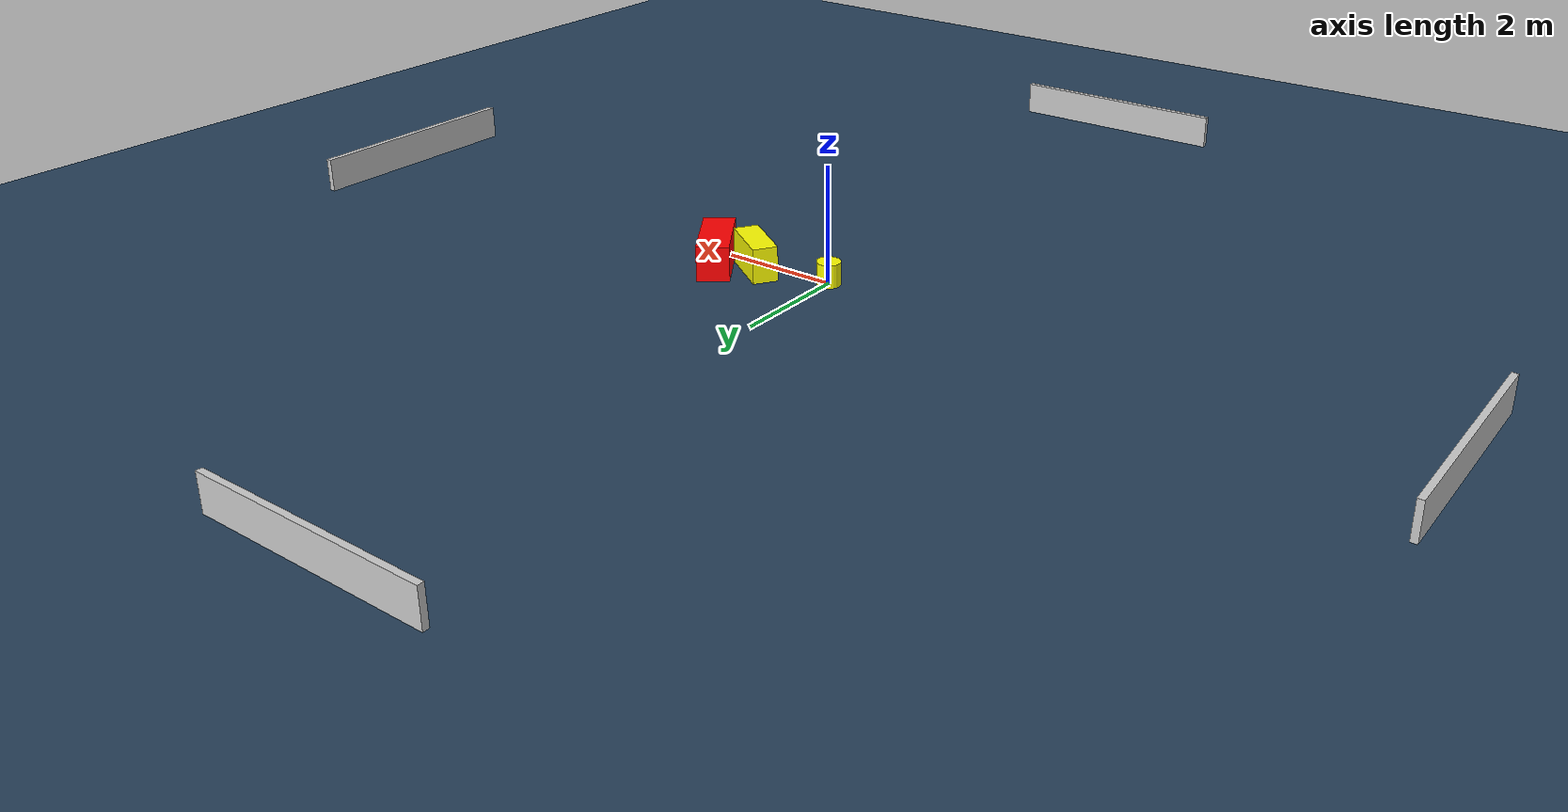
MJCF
<?xml version="1.0" ?>
<mujoco model="generated_environment">
  <option timestep="0.01" integrator="RK4" cone="elliptic"/>
  <default>
    <geom density="1"/>
  </default>
  <asset>
    <texture builtin="gradient" height="3072" name="skybox" rgb1="0.3 0.5 0.7" rgb2="0 0 0" type="skybox" width="512"/>
    <texture builtin="checker" height="300" name="groundplane" rgb1="0.2 0.3 0.4" rgb2="0.1 0.2 0.3" type="2d" width="300"/>
    <material name="groundplane" reflectance="0.2" texrepeat="5 5" texture="groundplane"/>
  </asset>
  <worldbody>
    <light dir="0 0 -1" directional="true" pos="0 0 1.5"/>
    <geom condim="3" friction="0.5 0.005 0.001" material="groundplane" name="floor" pos="0 0 0" size="0 0 0.05" type="plane"/>
    <body name="walls">
      <geom name="wall_1" condim="4" pos="-10.0 0.0 0.3" rgba="0.800000011920929 0.800000011920929 0.800000011920929 1.0" size="0.05 2.0 0.3" type="box"/>
      <geom name="wall_2" condim="4" pos="10.0 0.0 0.3" rgba="0.800000011920929 0.800000011920929 0.800000011920929 1.0" size="0.05 2.0 0.3" type="box"/>
      <geom name="wall_3" condim="4" pos="0.0 -10.0 0.3" rgba="0.800000011920929 0.800000011920929 0.800000011920929 1.0" size="2.0 0.05 0.3" type="box"/>
      <geom name="wall_4" condim="4" pos="0.0 10.0 0.3" rgba="0.800000011920929 0.800000011920929 0.800000011920929 1.0" size="2.0 0.05 0.3" type="box"/>
    </body>
    <body name="robot">
      <joint name="joint_x" type="slide" pos="0 0 0" axis="1 0 0"/>
      <joint name="joint_y" type="slide" pos="0 0 0" axis="0 1 0"/>
      <geom name="robot" type="cylinder" pos="0.0 0.0 0.2" size="0.2 0.2 0.0" mass="5.0" friction="1.0 0.005 0.0001" condim="4" rgba="1.0 1.0 0.0 1.0"/>
    </body>
    <body name="obstacle_1_movable">
      <geom name="obstacle_1_movable" condim="4" pos="1.2758612474425555 0.280830707041832 0.3" euler="0 0 326.8327605489163" friction="0.0 0.005 0.001" rgba="1.0 1.0 0.0 1.0" size="0.5048852090115785 0.21029732227383213 0.3" type="box" mass="0.1"/>
      <joint type="free"/>
    </body>
    <body name="obstacle_2_static">
      <geom name="obstacle_2_static" condim="4" pos="1.9350335143807682 0.4910451499485293 0.3" euler="0 0 214.80063671866858" friction="0.0 0.005 0.001" rgba="1.0 0.0 0.0 1.0" size="0.2700913237285019 0.6551788867655997 0.3" type="box"/>
    </body>
  </worldbody>
  <actuator>
    <motor name="actuator_x" joint="joint_x" gear="1" ctrlrange="-1 1"/>
    <motor name="actuator_y" joint="joint_y" gear="1" ctrlrange="-1 1"/>
  </actuator>
</mujoco>
